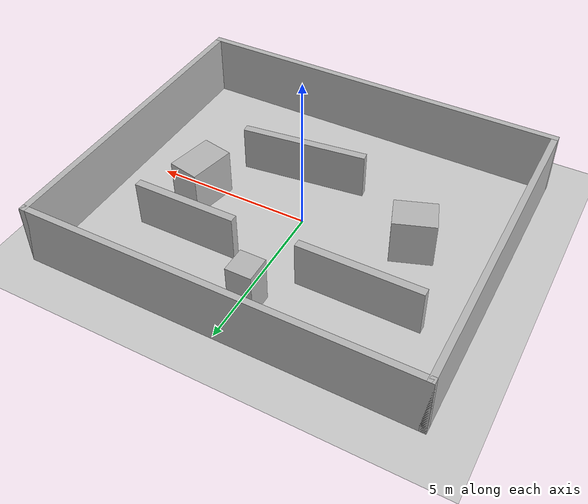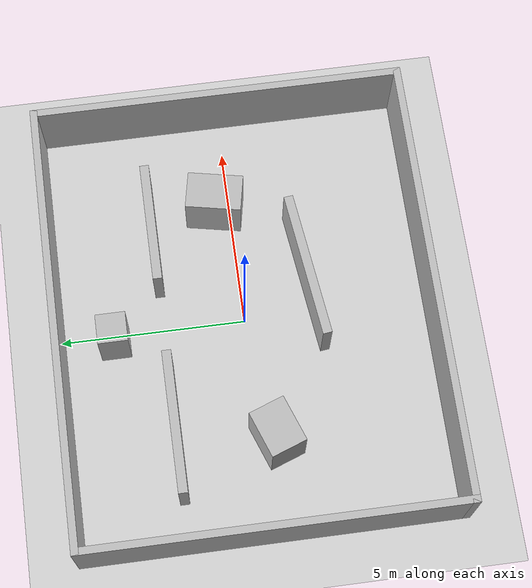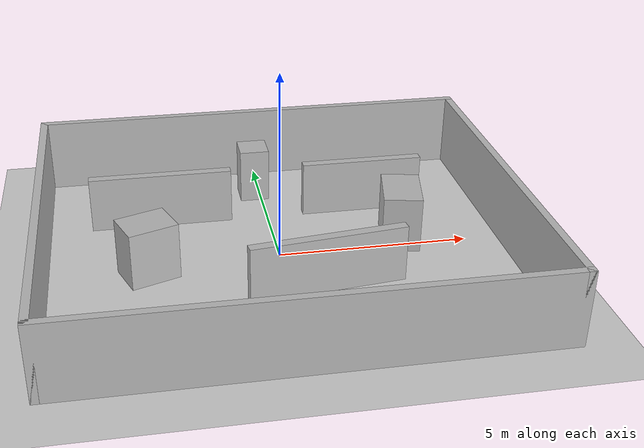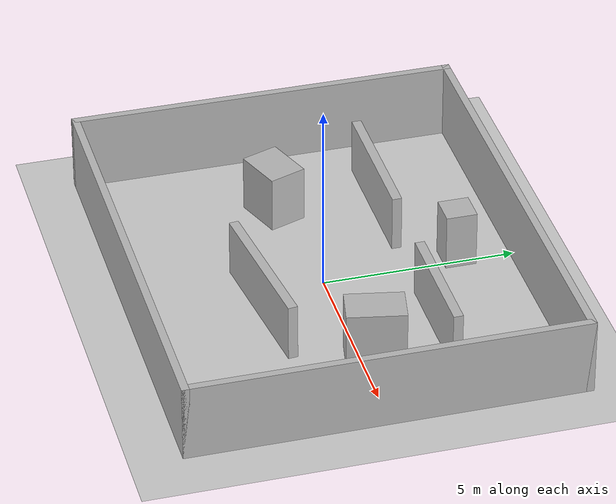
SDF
<sdf version="1.7">
  <world name="p3b5_holdout809">
    <plugin name="gazebo_ros_state" filename="libgazebo_ros_state.so">
      <ros>
        <namespace>/gazebo</namespace>
      </ros>
      <update_rate>10.0</update_rate>
    </plugin>
    <include>
      <uri>model://sun</uri>
    </include>
    <include>
      <uri>model://ground_plane</uri>
    </include>
    <gravity>0 0 -9.8</gravity>
    <physics type="ode">
      <max_step_size>.001</max_step_size>
      <real_time_factor>1</real_time_factor>
      <real_time_update_rate>1000</real_time_update_rate>
    </physics>
    <model name="heldout809_static_geometry">
      <static>true</static>
      <link name="geometry">
        <collision name="north">
          <pose>0 5 1 0 0 0</pose>
          <geometry>
            <box>
              <size>12.2 0.2 2</size>
            </box>
          </geometry>
        </collision>
        <visual name="north_visual">
          <pose>0 5 1 0 0 0</pose>
          <geometry>
            <box>
              <size>12.2 0.2 2</size>
            </box>
          </geometry>
        </visual>
        <collision name="south">
          <pose>0 -5 1 0 0 0</pose>
          <geometry>
            <box>
              <size>12.2 0.2 2</size>
            </box>
          </geometry>
        </collision>
        <visual name="south_visual">
          <pose>0 -5 1 0 0 0</pose>
          <geometry>
            <box>
              <size>12.2 0.2 2</size>
            </box>
          </geometry>
        </visual>
        <collision name="east">
          <pose>6 0 1 0 0 0</pose>
          <geometry>
            <box>
              <size>0.2 10.2 2</size>
            </box>
          </geometry>
        </collision>
        <visual name="east_visual">
          <pose>6 0 1 0 0 0</pose>
          <geometry>
            <box>
              <size>0.2 10.2 2</size>
            </box>
          </geometry>
        </visual>
        <collision name="west">
          <pose>-6 0 1 0 0 0</pose>
          <geometry>
            <box>
              <size>0.2 10.2 2</size>
            </box>
          </geometry>
        </collision>
        <visual name="west_visual">
          <pose>-6 0 1 0 0 0</pose>
          <geometry>
            <box>
              <size>0.2 10.2 2</size>
            </box>
          </geometry>
        </visual>
        <collision name="upper_left_partition">
          <pose>-2.9 2.2 0.75 0 0 0</pose>
          <geometry>
            <box>
              <size>3.8 0.25 1.5</size>
            </box>
          </geometry>
        </collision>
        <visual name="upper_left_partition_visual">
          <pose>-2.9 2.2 0.75 0 0 0</pose>
          <geometry>
            <box>
              <size>3.8 0.25 1.5</size>
            </box>
          </geometry>
        </visual>
        <collision name="upper_right_partition">
          <pose>2.65 2.2 0.75 0 0 0</pose>
          <geometry>
            <box>
              <size>3.3 0.25 1.5</size>
            </box>
          </geometry>
        </collision>
        <visual name="upper_right_partition_visual">
          <pose>2.65 2.2 0.75 0 0 0</pose>
          <geometry>
            <box>
              <size>3.3 0.25 1.5</size>
            </box>
          </geometry>
        </visual>
        <collision name="lower_staggered_partition">
          <pose>0.9 -1.8 0.75 0 0 0.12</pose>
          <geometry>
            <box>
              <size>4 0.25 1.5</size>
            </box>
          </geometry>
        </collision>
        <visual name="lower_staggered_partition_visual">
          <pose>0.9 -1.8 0.75 0 0 0.12</pose>
          <geometry>
            <box>
              <size>4 0.25 1.5</size>
            </box>
          </geometry>
        </visual>
        <collision name="west_block">
          <pose>-3.4 -0.4 0.75 0 0 0.35</pose>
          <geometry>
            <box>
              <size>1.3 1 1.5</size>
            </box>
          </geometry>
        </collision>
        <visual name="west_block_visual">
          <pose>-3.4 -0.4 0.75 0 0 0.35</pose>
          <geometry>
            <box>
              <size>1.3 1 1.5</size>
            </box>
          </geometry>
        </visual>
        <collision name="east_block">
          <pose>3.3 0.4 0.75 0 0 -0.2</pose>
          <geometry>
            <box>
              <size>1 1.5 1.5</size>
            </box>
          </geometry>
        </collision>
        <visual name="east_block_visual">
          <pose>3.3 0.4 0.75 0 0 -0.2</pose>
          <geometry>
            <box>
              <size>1 1.5 1.5</size>
            </box>
          </geometry>
        </visual>
        <collision name="upper_pillar">
          <pose>-0.2 3.55 0.75 0 0 0</pose>
          <geometry>
            <box>
              <size>0.8 0.8 1.5</size>
            </box>
          </geometry>
        </collision>
        <visual name="upper_pillar_visual">
          <pose>-0.2 3.55 0.75 0 0 0</pose>
          <geometry>
            <box>
              <size>0.8 0.8 1.5</size>
            </box>
          </geometry>
        </visual>
      </link>
    </model>
  </world>
</sdf>
